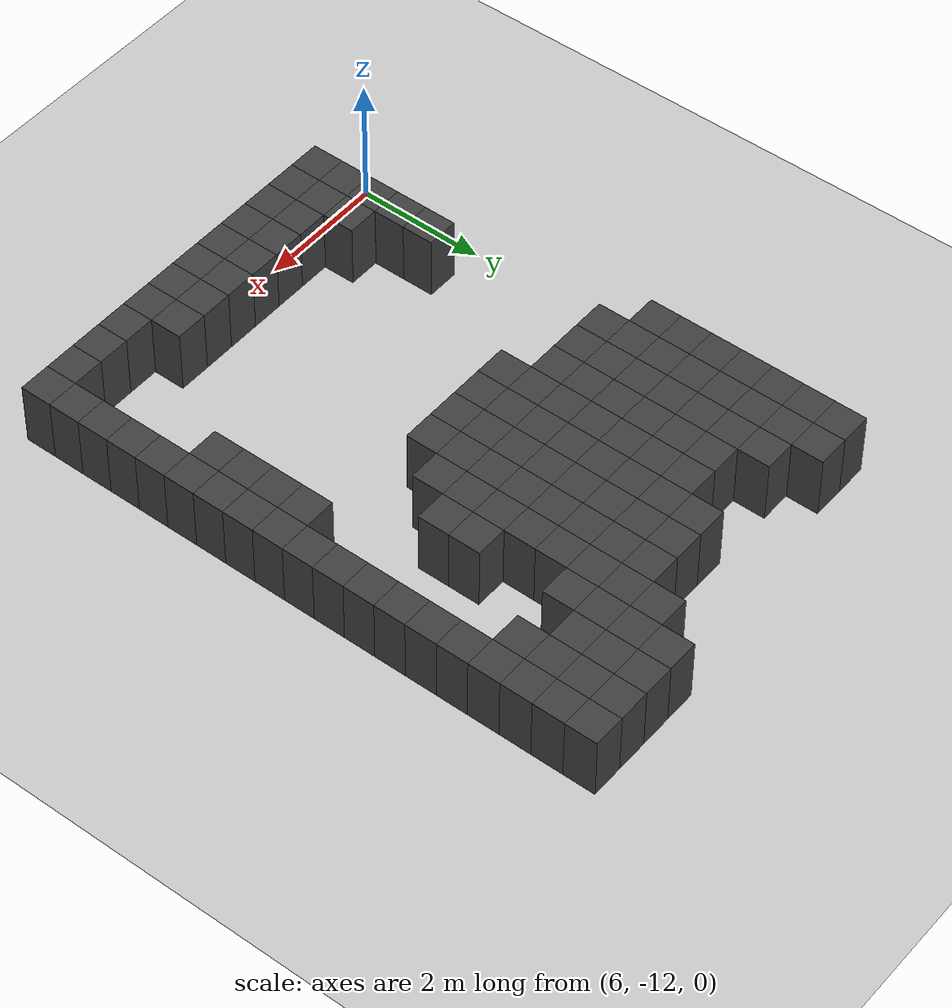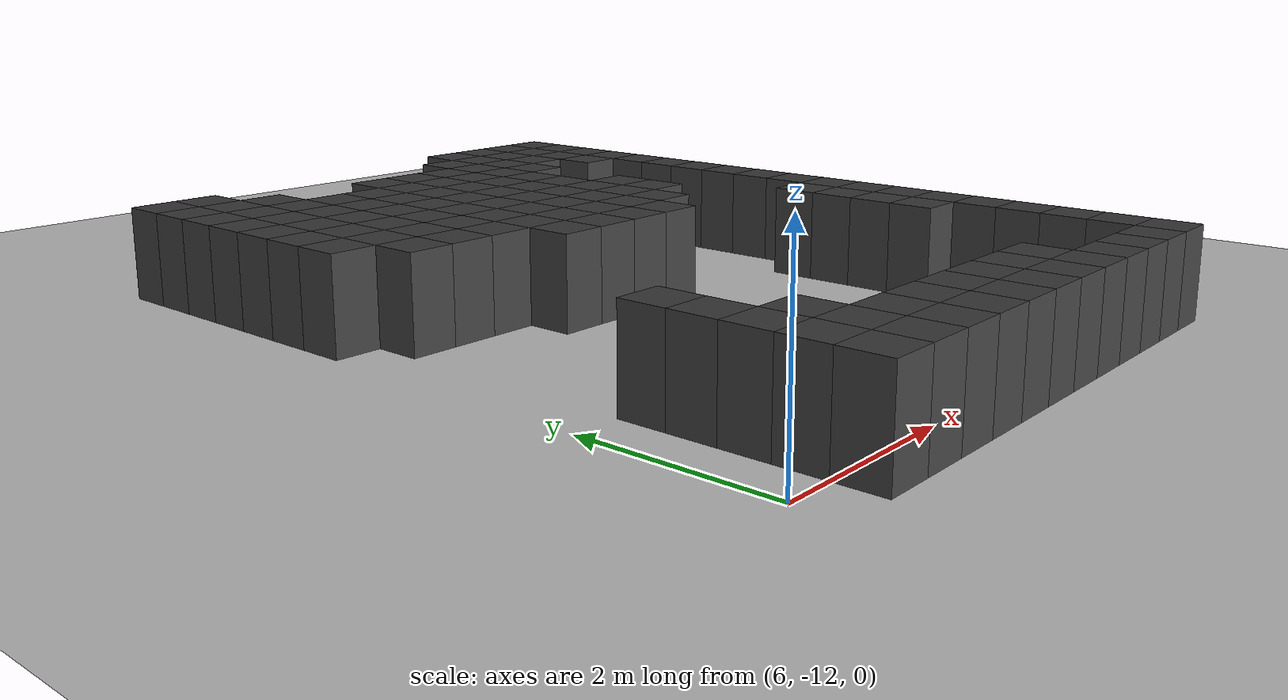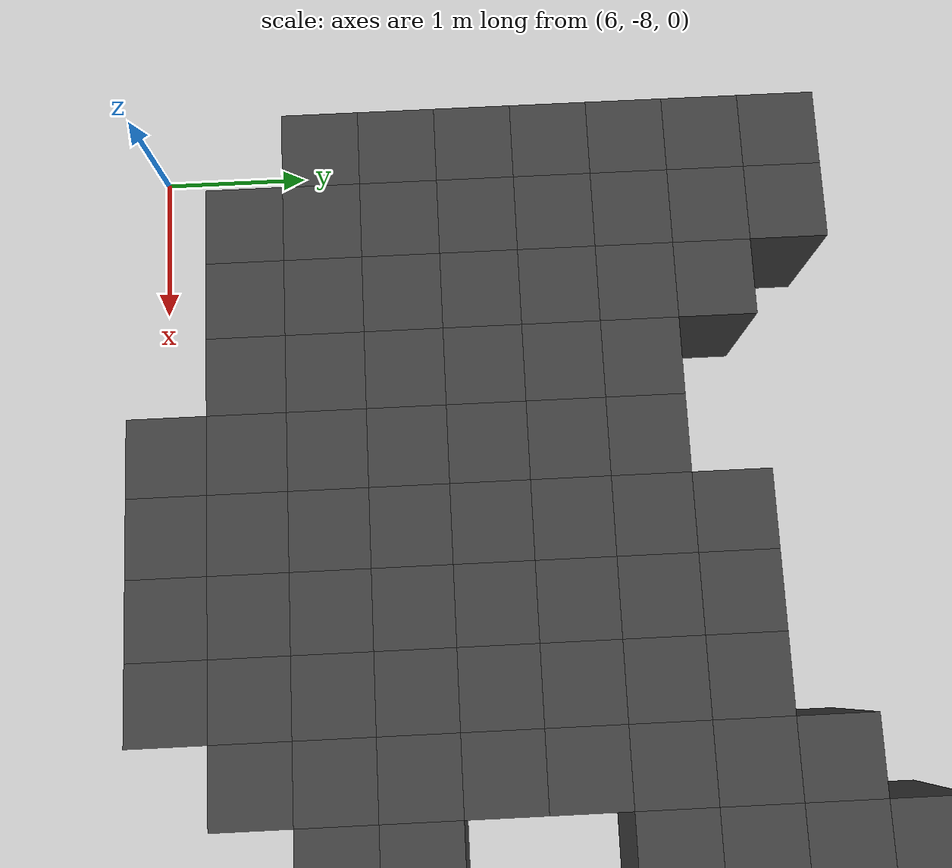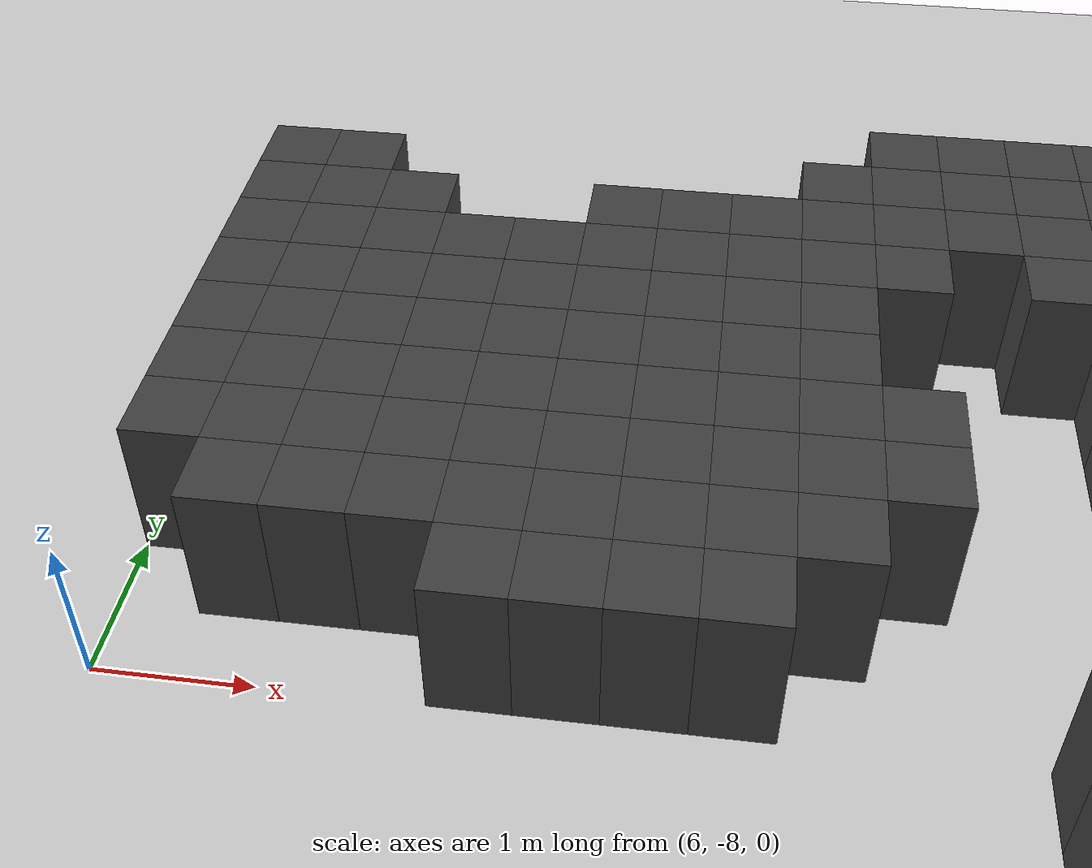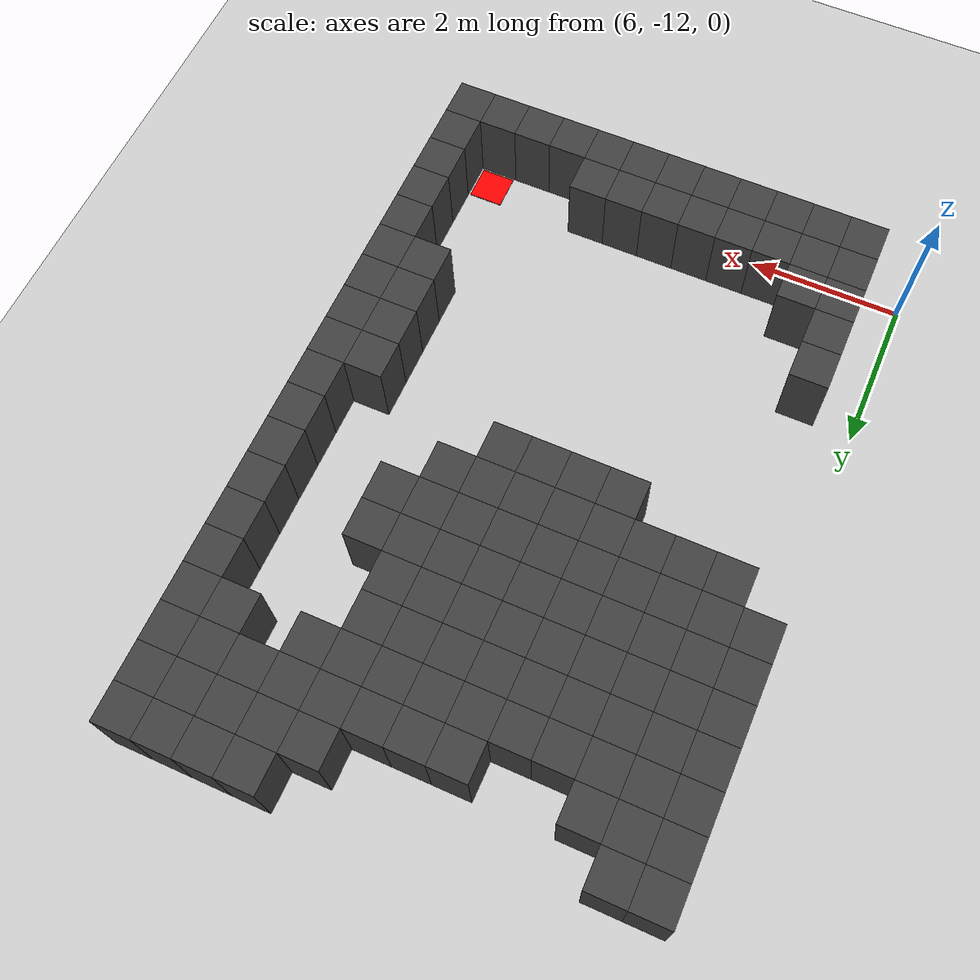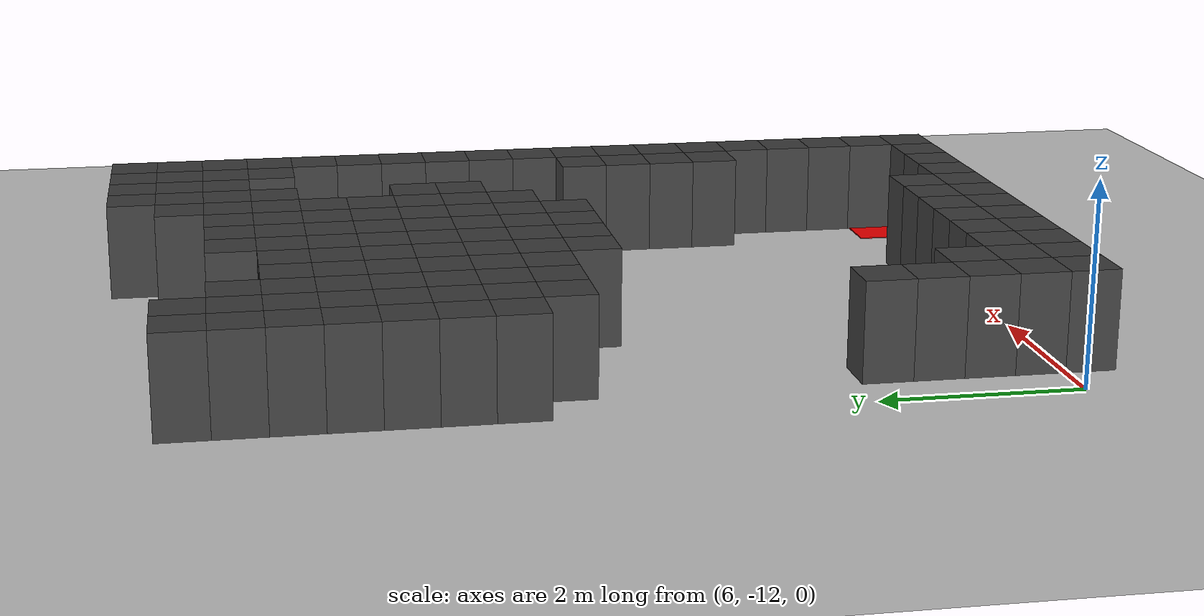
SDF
<sdf version="1.7">
 <world name="map_9544">
  <model name="ground_plane">
   <static>true</static>
   <link name="link">
    <collision name="collision">
     <geometry><plane><normal>0 0 1</normal><size>200 200</size></plane></geometry>
    </collision>
    <visual name="visual">
     <geometry><plane><normal>0 0 1</normal><size>200 200</size></plane></geometry>
     <material><ambient>0.8 0.8 0.8 1</ambient><diffuse>0.8 0.8 0.8 1</diffuse></material>
    </visual>
   </link>
  </model>
  <model name="maze_environment">
   <static>true</static>
   <link name="wall_533">
    <pose>10.750 -3.250 0.500 0 0 0</pose>
    <collision name="col"><geometry><box><size>0.5 0.5 1.0</size></box></geometry></collision>
    <visual name="vis">
     <geometry><box><size>0.5 0.5 1.0</size></box></geometry>
     <material><ambient>0.15 0.15 0.15 1</ambient><diffuse>0.25 0.25 0.25 1</diffuse></material>
    </visual>
   </link>
   <link name="wall_534">
    <pose>11.250 -3.250 0.500 0 0 0</pose>
    <collision name="col"><geometry><box><size>0.5 0.5 1.0</size></box></geometry></collision>
    <visual name="vis">
     <geometry><box><size>0.5 0.5 1.0</size></box></geometry>
     <material><ambient>0.15 0.15 0.15 1</ambient><diffuse>0.25 0.25 0.25 1</diffuse></material>
    </visual>
   </link>
   <link name="wall_535">
    <pose>11.750 -3.250 0.500 0 0 0</pose>
    <collision name="col"><geometry><box><size>0.5 0.5 1.0</size></box></geometry></collision>
    <visual name="vis">
     <geometry><box><size>0.5 0.5 1.0</size></box></geometry>
     <material><ambient>0.15 0.15 0.15 1</ambient><diffuse>0.25 0.25 0.25 1</diffuse></material>
    </visual>
   </link>
   <link name="wall_536">
    <pose>12.250 -3.250 0.500 0 0 0</pose>
    <collision name="col"><geometry><box><size>0.5 0.5 1.0</size></box></geometry></collision>
    <visual name="vis">
     <geometry><box><size>0.5 0.5 1.0</size></box></geometry>
     <material><ambient>0.15 0.15 0.15 1</ambient><diffuse>0.25 0.25 0.25 1</diffuse></material>
    </visual>
   </link>
   <link name="wall_553">
    <pose>6.250 -3.750 0.500 0 0 0</pose>
    <collision name="col"><geometry><box><size>0.5 0.5 1.0</size></box></geometry></collision>
    <visual name="vis">
     <geometry><box><size>0.5 0.5 1.0</size></box></geometry>
     <material><ambient>0.15 0.15 0.15 1</ambient><diffuse>0.25 0.25 0.25 1</diffuse></material>
    </visual>
   </link>
   <link name="wall_554">
    <pose>6.750 -3.750 0.500 0 0 0</pose>
    <collision name="col"><geometry><box><size>0.5 0.5 1.0</size></box></geometry></collision>
    <visual name="vis">
     <geometry><box><size>0.5 0.5 1.0</size></box></geometry>
     <material><ambient>0.15 0.15 0.15 1</ambient><diffuse>0.25 0.25 0.25 1</diffuse></material>
    </visual>
   </link>
   <link name="wall_555">
    <pose>10.250 -3.750 0.500 0 0 0</pose>
    <collision name="col"><geometry><box><size>0.5 0.5 1.0</size></box></geometry></collision>
    <visual name="vis">
     <geometry><box><size>0.5 0.5 1.0</size></box></geometry>
     <material><ambient>0.15 0.15 0.15 1</ambient><diffuse>0.25 0.25 0.25 1</diffuse></material>
    </visual>
   </link>
   <link name="wall_556">
    <pose>10.750 -3.750 0.500 0 0 0</pose>
    <collision name="col"><geometry><box><size>0.5 0.5 1.0</size></box></geometry></collision>
    <visual name="vis">
     <geometry><box><size>0.5 0.5 1.0</size></box></geometry>
     <material><ambient>0.15 0.15 0.15 1</ambient><diffuse>0.25 0.25 0.25 1</diffuse></material>
    </visual>
   </link>
   <link name="wall_557">
    <pose>11.250 -3.750 0.500 0 0 0</pose>
    <collision name="col"><geometry><box><size>0.5 0.5 1.0</size></box></geometry></collision>
    <visual name="vis">
     <geometry><box><size>0.5 0.5 1.0</size></box></geometry>
     <material><ambient>0.15 0.15 0.15 1</ambient><diffuse>0.25 0.25 0.25 1</diffuse></material>
    </visual>
   </link>
   <link name="wall_558">
    <pose>11.750 -3.750 0.500 0 0 0</pose>
    <collision name="col"><geometry><box><size>0.5 0.5 1.0</size></box></geometry></collision>
    <visual name="vis">
     <geometry><box><size>0.5 0.5 1.0</size></box></geometry>
     <material><ambient>0.15 0.15 0.15 1</ambient><diffuse>0.25 0.25 0.25 1</diffuse></material>
    </visual>
   </link>
   <link name="wall_559">
    <pose>12.250 -3.750 0.500 0 0 0</pose>
    <collision name="col"><geometry><box><size>0.5 0.5 1.0</size></box></geometry></collision>
    <visual name="vis">
     <geometry><box><size>0.5 0.5 1.0</size></box></geometry>
     <material><ambient>0.15 0.15 0.15 1</ambient><diffuse>0.25 0.25 0.25 1</diffuse></material>
    </visual>
   </link>
   <link name="wall_578">
    <pose>6.250 -4.250 0.500 0 0 0</pose>
    <collision name="col"><geometry><box><size>0.5 0.5 1.0</size></box></geometry></collision>
    <visual name="vis">
     <geometry><box><size>0.5 0.5 1.0</size></box></geometry>
     <material><ambient>0.15 0.15 0.15 1</ambient><diffuse>0.25 0.25 0.25 1</diffuse></material>
    </visual>
   </link>
   <link name="wall_579">
    <pose>6.750 -4.250 0.500 0 0 0</pose>
    <collision name="col"><geometry><box><size>0.5 0.5 1.0</size></box></geometry></collision>
    <visual name="vis">
     <geometry><box><size>0.5 0.5 1.0</size></box></geometry>
     <material><ambient>0.15 0.15 0.15 1</ambient><diffuse>0.25 0.25 0.25 1</diffuse></material>
    </visual>
   </link>
   <link name="wall_580">
    <pose>7.250 -4.250 0.500 0 0 0</pose>
    <collision name="col"><geometry><box><size>0.5 0.5 1.0</size></box></geometry></collision>
    <visual name="vis">
     <geometry><box><size>0.5 0.5 1.0</size></box></geometry>
     <material><ambient>0.15 0.15 0.15 1</ambient><diffuse>0.25 0.25 0.25 1</diffuse></material>
    </visual>
   </link>
   <link name="wall_581">
    <pose>8.750 -4.250 0.500 0 0 0</pose>
    <collision name="col"><geometry><box><size>0.5 0.5 1.0</size></box></geometry></collision>
    <visual name="vis">
     <geometry><box><size>0.5 0.5 1.0</size></box></geometry>
     <material><ambient>0.15 0.15 0.15 1</ambient><diffuse>0.25 0.25 0.25 1</diffuse></material>
    </visual>
   </link>
   <link name="wall_582">
    <pose>9.250 -4.250 0.500 0 0 0</pose>
    <collision name="col"><geometry><box><size>0.5 0.5 1.0</size></box></geometry></collision>
    <visual name="vis">
     <geometry><box><size>0.5 0.5 1.0</size></box></geometry>
     <material><ambient>0.15 0.15 0.15 1</ambient><diffuse>0.25 0.25 0.25 1</diffuse></material>
    </visual>
   </link>
   <link name="wall_583">
    <pose>9.750 -4.250 0.500 0 0 0</pose>
    <collision name="col"><geometry><box><size>0.5 0.5 1.0</size></box></geometry></collision>
    <visual name="vis">
     <geometry><box><size>0.5 0.5 1.0</size></box></geometry>
     <material><ambient>0.15 0.15 0.15 1</ambient><diffuse>0.25 0.25 0.25 1</diffuse></material>
    </visual>
   </link>
   <link name="wall_584">
    <pose>10.250 -4.250 0.500 0 0 0</pose>
    <collision name="col"><geometry><box><size>0.5 0.5 1.0</size></box></geometry></collision>
    <visual name="vis">
     <geometry><box><size>0.5 0.5 1.0</size></box></geometry>
     <material><ambient>0.15 0.15 0.15 1</ambient><diffuse>0.25 0.25 0.25 1</diffuse></material>
    </visual>
   </link>
   <link name="wall_585">
    <pose>10.750 -4.250 0.500 0 0 0</pose>
    <collision name="col"><geometry><box><size>0.5 0.5 1.0</size></box></geometry></collision>
    <visual name="vis">
     <geometry><box><size>0.5 0.5 1.0</size></box></geometry>
     <material><ambient>0.15 0.15 0.15 1</ambient><diffuse>0.25 0.25 0.25 1</diffuse></material>
    </visual>
   </link>
   <link name="wall_586">
    <pose>11.250 -4.250 0.500 0 0 0</pose>
    <collision name="col"><geometry><box><size>0.5 0.5 1.0</size></box></geometry></collision>
    <visual name="vis">
     <geometry><box><size>0.5 0.5 1.0</size></box></geometry>
     <material><ambient>0.15 0.15 0.15 1</ambient><diffuse>0.25 0.25 0.25 1</diffuse></material>
    </visual>
   </link>
   <link name="wall_587">
    <pose>11.750 -4.250 0.500 0 0 0</pose>
    <collision name="col"><geometry><box><size>0.5 0.5 1.0</size></box></geometry></collision>
    <visual name="vis">
     <geometry><box><size>0.5 0.5 1.0</size></box></geometry>
     <material><ambient>0.15 0.15 0.15 1</ambient><diffuse>0.25 0.25 0.25 1</diffuse></material>
    </visual>
   </link>
   <link name="wall_588">
    <pose>12.250 -4.250 0.500 0 0 0</pose>
    <collision name="col"><geometry><box><size>0.5 0.5 1.0</size></box></geometry></collision>
    <visual name="vis">
     <geometry><box><size>0.5 0.5 1.0</size></box></geometry>
     <material><ambient>0.15 0.15 0.15 1</ambient><diffuse>0.25 0.25 0.25 1</diffuse></material>
    </visual>
   </link>
   <link name="wall_608">
    <pose>6.250 -4.750 0.500 0 0 0</pose>
    <collision name="col"><geometry><box><size>0.5 0.5 1.0</size></box></geometry></collision>
    <visual name="vis">
     <geometry><box><size>0.5 0.5 1.0</size></box></geometry>
     <material><ambient>0.15 0.15 0.15 1</ambient><diffuse>0.25 0.25 0.25 1</diffuse></material>
    </visual>
   </link>
   <link name="wall_609">
    <pose>6.750 -4.750 0.500 0 0 0</pose>
    <collision name="col"><geometry><box><size>0.5 0.5 1.0</size></box></geometry></collision>
    <visual name="vis">
     <geometry><box><size>0.5 0.5 1.0</size></box></geometry>
     <material><ambient>0.15 0.15 0.15 1</ambient><diffuse>0.25 0.25 0.25 1</diffuse></material>
    </visual>
   </link>
   <link name="wall_610">
    <pose>7.250 -4.750 0.500 0 0 0</pose>
    <collision name="col"><geometry><box><size>0.5 0.5 1.0</size></box></geometry></collision>
    <visual name="vis">
     <geometry><box><size>0.5 0.5 1.0</size></box></geometry>
     <material><ambient>0.15 0.15 0.15 1</ambient><diffuse>0.25 0.25 0.25 1</diffuse></material>
    </visual>
   </link>
   <link name="wall_611">
    <pose>7.750 -4.750 0.500 0 0 0</pose>
    <collision name="col"><geometry><box><size>0.5 0.5 1.0</size></box></geometry></collision>
    <visual name="vis">
     <geometry><box><size>0.5 0.5 1.0</size></box></geometry>
     <material><ambient>0.15 0.15 0.15 1</ambient><diffuse>0.25 0.25 0.25 1</diffuse></material>
    </visual>
   </link>
   <link name="wall_612">
    <pose>8.250 -4.750 0.500 0 0 0</pose>
    <collision name="col"><geometry><box><size>0.5 0.5 1.0</size></box></geometry></collision>
    <visual name="vis">
     <geometry><box><size>0.5 0.5 1.0</size></box></geometry>
     <material><ambient>0.15 0.15 0.15 1</ambient><diffuse>0.25 0.25 0.25 1</diffuse></material>
    </visual>
   </link>
   <link name="wall_613">
    <pose>8.750 -4.750 0.500 0 0 0</pose>
    <collision name="col"><geometry><box><size>0.5 0.5 1.0</size></box></geometry></collision>
    <visual name="vis">
     <geometry><box><size>0.5 0.5 1.0</size></box></geometry>
     <material><ambient>0.15 0.15 0.15 1</ambient><diffuse>0.25 0.25 0.25 1</diffuse></material>
    </visual>
   </link>
   <link name="wall_614">
    <pose>9.250 -4.750 0.500 0 0 0</pose>
    <collision name="col"><geometry><box><size>0.5 0.5 1.0</size></box></geometry></collision>
    <visual name="vis">
     <geometry><box><size>0.5 0.5 1.0</size></box></geometry>
     <material><ambient>0.15 0.15 0.15 1</ambient><diffuse>0.25 0.25 0.25 1</diffuse></material>
    </visual>
   </link>
   <link name="wall_615">
    <pose>9.750 -4.750 0.500 0 0 0</pose>
    <collision name="col"><geometry><box><size>0.5 0.5 1.0</size></box></geometry></collision>
    <visual name="vis">
     <geometry><box><size>0.5 0.5 1.0</size></box></geometry>
     <material><ambient>0.15 0.15 0.15 1</ambient><diffuse>0.25 0.25 0.25 1</diffuse></material>
    </visual>
   </link>
   <link name="wall_616">
    <pose>10.250 -4.750 0.500 0 0 0</pose>
    <collision name="col"><geometry><box><size>0.5 0.5 1.0</size></box></geometry></collision>
    <visual name="vis">
     <geometry><box><size>0.5 0.5 1.0</size></box></geometry>
     <material><ambient>0.15 0.15 0.15 1</ambient><diffuse>0.25 0.25 0.25 1</diffuse></material>
    </visual>
   </link>
   <link name="wall_617">
    <pose>10.750 -4.750 0.500 0 0 0</pose>
    <collision name="col"><geometry><box><size>0.5 0.5 1.0</size></box></geometry></collision>
    <visual name="vis">
     <geometry><box><size>0.5 0.5 1.0</size></box></geometry>
     <material><ambient>0.15 0.15 0.15 1</ambient><diffuse>0.25 0.25 0.25 1</diffuse></material>
    </visual>
   </link>
   <link name="wall_618">
    <pose>11.750 -4.750 0.500 0 0 0</pose>
    <collision name="col"><geometry><box><size>0.5 0.5 1.0</size></box></geometry></collision>
    <visual name="vis">
     <geometry><box><size>0.5 0.5 1.0</size></box></geometry>
     <material><ambient>0.15 0.15 0.15 1</ambient><diffuse>0.25 0.25 0.25 1</diffuse></material>
    </visual>
   </link>
   <link name="wall_619">
    <pose>12.250 -4.750 0.500 0 0 0</pose>
    <collision name="col"><geometry><box><size>0.5 0.5 1.0</size></box></geometry></collision>
    <visual name="vis">
     <geometry><box><size>0.5 0.5 1.0</size></box></geometry>
     <material><ambient>0.15 0.15 0.15 1</ambient><diffuse>0.25 0.25 0.25 1</diffuse></material>
    </visual>
   </link>
   <link name="wall_636">
    <pose>6.250 -5.250 0.500 0 0 0</pose>
    <collision name="col"><geometry><box><size>0.5 0.5 1.0</size></box></geometry></collision>
    <visual name="vis">
     <geometry><box><size>0.5 0.5 1.0</size></box></geometry>
     <material><ambient>0.15 0.15 0.15 1</ambient><diffuse>0.25 0.25 0.25 1</diffuse></material>
    </visual>
   </link>
   <link name="wall_637">
    <pose>6.750 -5.250 0.500 0 0 0</pose>
    <collision name="col"><geometry><box><size>0.5 0.5 1.0</size></box></geometry></collision>
    <visual name="vis">
     <geometry><box><size>0.5 0.5 1.0</size></box></geometry>
     <material><ambient>0.15 0.15 0.15 1</ambient><diffuse>0.25 0.25 0.25 1</diffuse></material>
    </visual>
   </link>
   <link name="wall_638">
    <pose>7.250 -5.250 0.500 0 0 0</pose>
    <collision name="col"><geometry><box><size>0.5 0.5 1.0</size></box></geometry></collision>
    <visual name="vis">
     <geometry><box><size>0.5 0.5 1.0</size></box></geometry>
     <material><ambient>0.15 0.15 0.15 1</ambient><diffuse>0.25 0.25 0.25 1</diffuse></material>
    </visual>
   </link>
   <link name="wall_639">
    <pose>7.750 -5.250 0.500 0 0 0</pose>
    <collision name="col"><geometry><box><size>0.5 0.5 1.0</size></box></geometry></collision>
    <visual name="vis">
     <geometry><box><size>0.5 0.5 1.0</size></box></geometry>
     <material><ambient>0.15 0.15 0.15 1</ambient><diffuse>0.25 0.25 0.25 1</diffuse></material>
    </visual>
   </link>
   <link name="wall_640">
    <pose>8.250 -5.250 0.500 0 0 0</pose>
    <collision name="col"><geometry><box><size>0.5 0.5 1.0</size></box></geometry></collision>
    <visual name="vis">
     <geometry><box><size>0.5 0.5 1.0</size></box></geometry>
     <material><ambient>0.15 0.15 0.15 1</ambient><diffuse>0.25 0.25 0.25 1</diffuse></material>
    </visual>
   </link>
   <link name="wall_641">
    <pose>8.750 -5.250 0.500 0 0 0</pose>
    <collision name="col"><geometry><box><size>0.5 0.5 1.0</size></box></geometry></collision>
    <visual name="vis">
     <geometry><box><size>0.5 0.5 1.0</size></box></geometry>
     <material><ambient>0.15 0.15 0.15 1</ambient><diffuse>0.25 0.25 0.25 1</diffuse></material>
    </visual>
   </link>
   <link name="wall_642">
    <pose>9.250 -5.250 0.500 0 0 0</pose>
    <collision name="col"><geometry><box><size>0.5 0.5 1.0</size></box></geometry></collision>
    <visual name="vis">
     <geometry><box><size>0.5 0.5 1.0</size></box></geometry>
     <material><ambient>0.15 0.15 0.15 1</ambient><diffuse>0.25 0.25 0.25 1</diffuse></material>
    </visual>
   </link>
   <link name="wall_643">
    <pose>9.750 -5.250 0.500 0 0 0</pose>
    <collision name="col"><geometry><box><size>0.5 0.5 1.0</size></box></geometry></collision>
    <visual name="vis">
     <geometry><box><size>0.5 0.5 1.0</size></box></geometry>
     <material><ambient>0.15 0.15 0.15 1</ambient><diffuse>0.25 0.25 0.25 1</diffuse></material>
    </visual>
   </link>
   <link name="wall_644">
    <pose>10.250 -5.250 0.500 0 0 0</pose>
    <collision name="col"><geometry><box><size>0.5 0.5 1.0</size></box></geometry></collision>
    <visual name="vis">
     <geometry><box><size>0.5 0.5 1.0</size></box></geometry>
     <material><ambient>0.15 0.15 0.15 1</ambient><diffuse>0.25 0.25 0.25 1</diffuse></material>
    </visual>
   </link>
   <link name="wall_645">
    <pose>12.250 -5.250 0.500 0 0 0</pose>
    <collision name="col"><geometry><box><size>0.5 0.5 1.0</size></box></geometry></collision>
    <visual name="vis">
     <geometry><box><size>0.5 0.5 1.0</size></box></geometry>
     <material><ambient>0.15 0.15 0.15 1</ambient><diffuse>0.25 0.25 0.25 1</diffuse></material>
    </visual>
   </link>
   <link name="wall_661">
    <pose>6.250 -5.750 0.500 0 0 0</pose>
    <collision name="col"><geometry><box><size>0.5 0.5 1.0</size></box></geometry></collision>
    <visual name="vis">
     <geometry><box><size>0.5 0.5 1.0</size></box></geometry>
     <material><ambient>0.15 0.15 0.15 1</ambient><diffuse>0.25 0.25 0.25 1</diffuse></material>
    </visual>
   </link>
   <link name="wall_662">
    <pose>6.750 -5.750 0.500 0 0 0</pose>
    <collision name="col"><geometry><box><size>0.5 0.5 1.0</size></box></geometry></collision>
    <visual name="vis">
     <geometry><box><size>0.5 0.5 1.0</size></box></geometry>
     <material><ambient>0.15 0.15 0.15 1</ambient><diffuse>0.25 0.25 0.25 1</diffuse></material>
    </visual>
   </link>
   <link name="wall_663">
    <pose>7.250 -5.750 0.500 0 0 0</pose>
    <collision name="col"><geometry><box><size>0.5 0.5 1.0</size></box></geometry></collision>
    <visual name="vis">
     <geometry><box><size>0.5 0.5 1.0</size></box></geometry>
     <material><ambient>0.15 0.15 0.15 1</ambient><diffuse>0.25 0.25 0.25 1</diffuse></material>
    </visual>
   </link>
   <link name="wall_664">
    <pose>7.750 -5.750 0.500 0 0 0</pose>
    <collision name="col"><geometry><box><size>0.5 0.5 1.0</size></box></geometry></collision>
    <visual name="vis">
     <geometry><box><size>0.5 0.5 1.0</size></box></geometry>
     <material><ambient>0.15 0.15 0.15 1</ambient><diffuse>0.25 0.25 0.25 1</diffuse></material>
    </visual>
   </link>
   <link name="wall_665">
    <pose>8.250 -5.750 0.500 0 0 0</pose>
    <collision name="col"><geometry><box><size>0.5 0.5 1.0</size></box></geometry></collision>
    <visual name="vis">
     <geometry><box><size>0.5 0.5 1.0</size></box></geometry>
     <material><ambient>0.15 0.15 0.15 1</ambient><diffuse>0.25 0.25 0.25 1</diffuse></material>
    </visual>
   </link>
   <link name="wall_666">
    <pose>8.750 -5.750 0.500 0 0 0</pose>
    <collision name="col"><geometry><box><size>0.5 0.5 1.0</size></box></geometry></collision>
    <visual name="vis">
     <geometry><box><size>0.5 0.5 1.0</size></box></geometry>
     <material><ambient>0.15 0.15 0.15 1</ambient><diffuse>0.25 0.25 0.25 1</diffuse></material>
    </visual>
   </link>
   <link name="wall_667">
    <pose>9.250 -5.750 0.500 0 0 0</pose>
    <collision name="col"><geometry><box><size>0.5 0.5 1.0</size></box></geometry></collision>
    <visual name="vis">
     <geometry><box><size>0.5 0.5 1.0</size></box></geometry>
     <material><ambient>0.15 0.15 0.15 1</ambient><diffuse>0.25 0.25 0.25 1</diffuse></material>
    </visual>
   </link>
   <link name="wall_668">
    <pose>9.750 -5.750 0.500 0 0 0</pose>
    <collision name="col"><geometry><box><size>0.5 0.5 1.0</size></box></geometry></collision>
    <visual name="vis">
     <geometry><box><size>0.5 0.5 1.0</size></box></geometry>
     <material><ambient>0.15 0.15 0.15 1</ambient><diffuse>0.25 0.25 0.25 1</diffuse></material>
    </visual>
   </link>
   <link name="wall_669">
    <pose>10.250 -5.750 0.500 0 0 0</pose>
    <collision name="col"><geometry><box><size>0.5 0.5 1.0</size></box></geometry></collision>
    <visual name="vis">
     <geometry><box><size>0.5 0.5 1.0</size></box></geometry>
     <material><ambient>0.15 0.15 0.15 1</ambient><diffuse>0.25 0.25 0.25 1</diffuse></material>
    </visual>
   </link>
   <link name="wall_670">
    <pose>12.250 -5.750 0.500 0 0 0</pose>
    <collision name="col"><geometry><box><size>0.5 0.5 1.0</size></box></geometry></collision>
    <visual name="vis">
     <geometry><box><size>0.5 0.5 1.0</size></box></geometry>
     <material><ambient>0.15 0.15 0.15 1</ambient><diffuse>0.25 0.25 0.25 1</diffuse></material>
    </visual>
   </link>
   <link name="wall_690">
    <pose>6.250 -6.250 0.500 0 0 0</pose>
    <collision name="col"><geometry><box><size>0.5 0.5 1.0</size></box></geometry></collision>
    <visual name="vis">
     <geometry><box><size>0.5 0.5 1.0</size></box></geometry>
     <material><ambient>0.15 0.15 0.15 1</ambient><diffuse>0.25 0.25 0.25 1</diffuse></material>
    </visual>
   </link>
   <link name="wall_691">
    <pose>6.750 -6.250 0.500 0 0 0</pose>
    <collision name="col"><geometry><box><size>0.5 0.5 1.0</size></box></geometry></collision>
    <visual name="vis">
     <geometry><box><size>0.5 0.5 1.0</size></box></geometry>
     <material><ambient>0.15 0.15 0.15 1</ambient><diffuse>0.25 0.25 0.25 1</diffuse></material>
    </visual>
   </link>
   <link name="wall_692">
    <pose>7.250 -6.250 0.500 0 0 0</pose>
    <collision name="col"><geometry><box><size>0.5 0.5 1.0</size></box></geometry></collision>
    <visual name="vis">
     <geometry><box><size>0.5 0.5 1.0</size></box></geometry>
     <material><ambient>0.15 0.15 0.15 1</ambient><diffuse>0.25 0.25 0.25 1</diffuse></material>
    </visual>
   </link>
   <link name="wall_693">
    <pose>7.750 -6.250 0.500 0 0 0</pose>
    <collision name="col"><geometry><box><size>0.5 0.5 1.0</size></box></geometry></collision>
    <visual name="vis">
     <geometry><box><size>0.5 0.5 1.0</size></box></geometry>
     <material><ambient>0.15 0.15 0.15 1</ambient><diffuse>0.25 0.25 0.25 1</diffuse></material>
    </visual>
   </link>
   <link name="wall_694">
    <pose>8.250 -6.250 0.500 0 0 0</pose>
    <collision name="col"><geometry><box><size>0.5 0.5 1.0</size></box></geometry></collision>
    <visual name="vis">
     <geometry><box><size>0.5 0.5 1.0</size></box></geometry>
     <material><ambient>0.15 0.15 0.15 1</ambient><diffuse>0.25 0.25 0.25 1</diffuse></material>
    </visual>
   </link>
   <link name="wall_695">
    <pose>8.750 -6.250 0.500 0 0 0</pose>
    <collision name="col"><geometry><box><size>0.5 0.5 1.0</size></box></geometry></collision>
    <visual name="vis">
     <geometry><box><size>0.5 0.5 1.0</size></box></geometry>
     <material><ambient>0.15 0.15 0.15 1</ambient><diffuse>0.25 0.25 0.25 1</diffuse></material>
    </visual>
   </link>
   <link name="wall_696">
    <pose>9.250 -6.250 0.500 0 0 0</pose>
    <collision name="col"><geometry><box><size>0.5 0.5 1.0</size></box></geometry></collision>
    <visual name="vis">
     <geometry><box><size>0.5 0.5 1.0</size></box></geometry>
     <material><ambient>0.15 0.15 0.15 1</ambient><diffuse>0.25 0.25 0.25 1</diffuse></material>
    </visual>
   </link>
   <link name="wall_697">
    <pose>9.750 -6.250 0.500 0 0 0</pose>
    <collision name="col"><geometry><box><size>0.5 0.5 1.0</size></box></geometry></collision>
    <visual name="vis">
     <geometry><box><size>0.5 0.5 1.0</size></box></geometry>
     <material><ambient>0.15 0.15 0.15 1</ambient><diffuse>0.25 0.25 0.25 1</diffuse></material>
    </visual>
   </link>
   <link name="wall_698">
    <pose>10.250 -6.250 0.500 0 0 0</pose>
    <collision name="col"><geometry><box><size>0.5 0.5 1.0</size></box></geometry></collision>
    <visual name="vis">
     <geometry><box><size>0.5 0.5 1.0</size></box></geometry>
     <material><ambient>0.15 0.15 0.15 1</ambient><diffuse>0.25 0.25 0.25 1</diffuse></material>
    </visual>
   </link>
   <link name="wall_699">
    <pose>10.750 -6.250 0.500 0 0 0</pose>
    <collision name="col"><geometry><box><size>0.5 0.5 1.0</size></box></geometry></collision>
    <visual name="vis">
     <geometry><box><size>0.5 0.5 1.0</size></box></geometry>
     <material><ambient>0.15 0.15 0.15 1</ambient><diffuse>0.25 0.25 0.25 1</diffuse></material>
    </visual>
   </link>
   <link name="wall_700">
    <pose>12.250 -6.250 0.500 0 0 0</pose>
    <collision name="col"><geometry><box><size>0.5 0.5 1.0</size></box></geometry></collision>
    <visual name="vis">
     <geometry><box><size>0.5 0.5 1.0</size></box></geometry>
     <material><ambient>0.15 0.15 0.15 1</ambient><diffuse>0.25 0.25 0.25 1</diffuse></material>
    </visual>
   </link>
   <link name="wall_725">
    <pose>6.250 -6.750 0.500 0 0 0</pose>
    <collision name="col"><geometry><box><size>0.5 0.5 1.0</size></box></geometry></collision>
    <visual name="vis">
     <geometry><box><size>0.5 0.5 1.0</size></box></geometry>
     <material><ambient>0.15 0.15 0.15 1</ambient><diffuse>0.25 0.25 0.25 1</diffuse></material>
    </visual>
   </link>
   <link name="wall_726">
    <pose>6.750 -6.750 0.500 0 0 0</pose>
    <collision name="col"><geometry><box><size>0.5 0.5 1.0</size></box></geometry></collision>
    <visual name="vis">
     <geometry><box><size>0.5 0.5 1.0</size></box></geometry>
     <material><ambient>0.15 0.15 0.15 1</ambient><diffuse>0.25 0.25 0.25 1</diffuse></material>
    </visual>
   </link>
   <link name="wall_727">
    <pose>7.250 -6.750 0.500 0 0 0</pose>
    <collision name="col"><geometry><box><size>0.5 0.5 1.0</size></box></geometry></collision>
    <visual name="vis">
     <geometry><box><size>0.5 0.5 1.0</size></box></geometry>
     <material><ambient>0.15 0.15 0.15 1</ambient><diffuse>0.25 0.25 0.25 1</diffuse></material>
    </visual>
   </link>
   <link name="wall_728">
    <pose>7.750 -6.750 0.500 0 0 0</pose>
    <collision name="col"><geometry><box><size>0.5 0.5 1.0</size></box></geometry></collision>
    <visual name="vis">
     <geometry><box><size>0.5 0.5 1.0</size></box></geometry>
     <material><ambient>0.15 0.15 0.15 1</ambient><diffuse>0.25 0.25 0.25 1</diffuse></material>
    </visual>
   </link>
   <link name="wall_729">
    <pose>8.250 -6.750 0.500 0 0 0</pose>
    <collision name="col"><geometry><box><size>0.5 0.5 1.0</size></box></geometry></collision>
    <visual name="vis">
     <geometry><box><size>0.5 0.5 1.0</size></box></geometry>
     <material><ambient>0.15 0.15 0.15 1</ambient><diffuse>0.25 0.25 0.25 1</diffuse></material>
    </visual>
   </link>
   <link name="wall_730">
    <pose>8.750 -6.750 0.500 0 0 0</pose>
    <collision name="col"><geometry><box><size>0.5 0.5 1.0</size></box></geometry></collision>
    <visual name="vis">
     <geometry><box><size>0.5 0.5 1.0</size></box></geometry>
     <material><ambient>0.15 0.15 0.15 1</ambient><diffuse>0.25 0.25 0.25 1</diffuse></material>
    </visual>
   </link>
   <link name="wall_731">
    <pose>9.250 -6.750 0.500 0 0 0</pose>
    <collision name="col"><geometry><box><size>0.5 0.5 1.0</size></box></geometry></collision>
    <visual name="vis">
     <geometry><box><size>0.5 0.5 1.0</size></box></geometry>
     <material><ambient>0.15 0.15 0.15 1</ambient><diffuse>0.25 0.25 0.25 1</diffuse></material>
    </visual>
   </link>
   <link name="wall_732">
    <pose>9.750 -6.750 0.500 0 0 0</pose>
    <collision name="col"><geometry><box><size>0.5 0.5 1.0</size></box></geometry></collision>
    <visual name="vis">
     <geometry><box><size>0.5 0.5 1.0</size></box></geometry>
     <material><ambient>0.15 0.15 0.15 1</ambient><diffuse>0.25 0.25 0.25 1</diffuse></material>
    </visual>
   </link>
   <link name="wall_733">
    <pose>10.250 -6.750 0.500 0 0 0</pose>
    <collision name="col"><geometry><box><size>0.5 0.5 1.0</size></box></geometry></collision>
    <visual name="vis">
     <geometry><box><size>0.5 0.5 1.0</size></box></geometry>
     <material><ambient>0.15 0.15 0.15 1</ambient><diffuse>0.25 0.25 0.25 1</diffuse></material>
    </visual>
   </link>
   <link name="wall_734">
    <pose>10.750 -6.750 0.500 0 0 0</pose>
    <collision name="col"><geometry><box><size>0.5 0.5 1.0</size></box></geometry></collision>
    <visual name="vis">
     <geometry><box><size>0.5 0.5 1.0</size></box></geometry>
     <material><ambient>0.15 0.15 0.15 1</ambient><diffuse>0.25 0.25 0.25 1</diffuse></material>
    </visual>
   </link>
   <link name="wall_735">
    <pose>12.250 -6.750 0.500 0 0 0</pose>
    <collision name="col"><geometry><box><size>0.5 0.5 1.0</size></box></geometry></collision>
    <visual name="vis">
     <geometry><box><size>0.5 0.5 1.0</size></box></geometry>
     <material><ambient>0.15 0.15 0.15 1</ambient><diffuse>0.25 0.25 0.25 1</diffuse></material>
    </visual>
   </link>
   <link name="wall_760">
    <pose>6.750 -7.250 0.500 0 0 0</pose>
    <collision name="col"><geometry><box><size>0.5 0.5 1.0</size></box></geometry></collision>
    <visual name="vis">
     <geometry><box><size>0.5 0.5 1.0</size></box></geometry>
     <material><ambient>0.15 0.15 0.15 1</ambient><diffuse>0.25 0.25 0.25 1</diffuse></material>
    </visual>
   </link>
   <link name="wall_761">
    <pose>7.250 -7.250 0.500 0 0 0</pose>
    <collision name="col"><geometry><box><size>0.5 0.5 1.0</size></box></geometry></collision>
    <visual name="vis">
     <geometry><box><size>0.5 0.5 1.0</size></box></geometry>
     <material><ambient>0.15 0.15 0.15 1</ambient><diffuse>0.25 0.25 0.25 1</diffuse></material>
    </visual>
   </link>
   <link name="wall_762">
    <pose>7.750 -7.250 0.500 0 0 0</pose>
    <collision name="col"><geometry><box><size>0.5 0.5 1.0</size></box></geometry></collision>
    <visual name="vis">
     <geometry><box><size>0.5 0.5 1.0</size></box></geometry>
     <material><ambient>0.15 0.15 0.15 1</ambient><diffuse>0.25 0.25 0.25 1</diffuse></material>
    </visual>
   </link>
   <link name="wall_763">
    <pose>8.250 -7.250 0.500 0 0 0</pose>
    <collision name="col"><geometry><box><size>0.5 0.5 1.0</size></box></geometry></collision>
    <visual name="vis">
     <geometry><box><size>0.5 0.5 1.0</size></box></geometry>
     <material><ambient>0.15 0.15 0.15 1</ambient><diffuse>0.25 0.25 0.25 1</diffuse></material>
    </visual>
   </link>
   <link name="wall_764">
    <pose>8.750 -7.250 0.500 0 0 0</pose>
    <collision name="col"><geometry><box><size>0.5 0.5 1.0</size></box></geometry></collision>
    <visual name="vis">
     <geometry><box><size>0.5 0.5 1.0</size></box></geometry>
     <material><ambient>0.15 0.15 0.15 1</ambient><diffuse>0.25 0.25 0.25 1</diffuse></material>
    </visual>
   </link>
   <link name="wall_765">
    <pose>9.250 -7.250 0.500 0 0 0</pose>
    <collision name="col"><geometry><box><size>0.5 0.5 1.0</size></box></geometry></collision>
    <visual name="vis">
     <geometry><box><size>0.5 0.5 1.0</size></box></geometry>
     <material><ambient>0.15 0.15 0.15 1</ambient><diffuse>0.25 0.25 0.25 1</diffuse></material>
    </visual>
   </link>
   <link name="wall_766">
    <pose>9.750 -7.250 0.500 0 0 0</pose>
    <collision name="col"><geometry><box><size>0.5 0.5 1.0</size></box></geometry></collision>
    <visual name="vis">
     <geometry><box><size>0.5 0.5 1.0</size></box></geometry>
     <material><ambient>0.15 0.15 0.15 1</ambient><diffuse>0.25 0.25 0.25 1</diffuse></material>
    </visual>
   </link>
   <link name="wall_767">
    <pose>10.250 -7.250 0.500 0 0 0</pose>
    <collision name="col"><geometry><box><size>0.5 0.5 1.0</size></box></geometry></collision>
    <visual name="vis">
     <geometry><box><size>0.5 0.5 1.0</size></box></geometry>
     <material><ambient>0.15 0.15 0.15 1</ambient><diffuse>0.25 0.25 0.25 1</diffuse></material>
    </visual>
   </link>
   <link name="wall_768">
    <pose>12.250 -7.250 0.500 0 0 0</pose>
    <collision name="col"><geometry><box><size>0.5 0.5 1.0</size></box></geometry></collision>
    <visual name="vis">
     <geometry><box><size>0.5 0.5 1.0</size></box></geometry>
     <material><ambient>0.15 0.15 0.15 1</ambient><diffuse>0.25 0.25 0.25 1</diffuse></material>
    </visual>
   </link>
   <link name="wall_792">
    <pose>8.250 -7.750 0.500 0 0 0</pose>
    <collision name="col"><geometry><box><size>0.5 0.5 1.0</size></box></geometry></collision>
    <visual name="vis">
     <geometry><box><size>0.5 0.5 1.0</size></box></geometry>
     <material><ambient>0.15 0.15 0.15 1</ambient><diffuse>0.25 0.25 0.25 1</diffuse></material>
    </visual>
   </link>
   <link name="wall_793">
    <pose>8.750 -7.750 0.500 0 0 0</pose>
    <collision name="col"><geometry><box><size>0.5 0.5 1.0</size></box></geometry></collision>
    <visual name="vis">
     <geometry><box><size>0.5 0.5 1.0</size></box></geometry>
     <material><ambient>0.15 0.15 0.15 1</ambient><diffuse>0.25 0.25 0.25 1</diffuse></material>
    </visual>
   </link>
   <link name="wall_794">
    <pose>9.250 -7.750 0.500 0 0 0</pose>
    <collision name="col"><geometry><box><size>0.5 0.5 1.0</size></box></geometry></collision>
    <visual name="vis">
     <geometry><box><size>0.5 0.5 1.0</size></box></geometry>
     <material><ambient>0.15 0.15 0.15 1</ambient><diffuse>0.25 0.25 0.25 1</diffuse></material>
    </visual>
   </link>
   <link name="wall_795">
    <pose>9.750 -7.750 0.500 0 0 0</pose>
    <collision name="col"><geometry><box><size>0.5 0.5 1.0</size></box></geometry></collision>
    <visual name="vis">
     <geometry><box><size>0.5 0.5 1.0</size></box></geometry>
     <material><ambient>0.15 0.15 0.15 1</ambient><diffuse>0.25 0.25 0.25 1</diffuse></material>
    </visual>
   </link>
   <link name="wall_796">
    <pose>12.250 -7.750 0.500 0 0 0</pose>
    <collision name="col"><geometry><box><size>0.5 0.5 1.0</size></box></geometry></collision>
    <visual name="vis">
     <geometry><box><size>0.5 0.5 1.0</size></box></geometry>
     <material><ambient>0.15 0.15 0.15 1</ambient><diffuse>0.25 0.25 0.25 1</diffuse></material>
    </visual>
   </link>
   <link name="wall_816">
    <pose>11.750 -8.250 0.500 0 0 0</pose>
    <collision name="col"><geometry><box><size>0.5 0.5 1.0</size></box></geometry></collision>
    <visual name="vis">
     <geometry><box><size>0.5 0.5 1.0</size></box></geometry>
     <material><ambient>0.15 0.15 0.15 1</ambient><diffuse>0.25 0.25 0.25 1</diffuse></material>
    </visual>
   </link>
   <link name="wall_817">
    <pose>12.250 -8.250 0.500 0 0 0</pose>
    <collision name="col"><geometry><box><size>0.5 0.5 1.0</size></box></geometry></collision>
    <visual name="vis">
     <geometry><box><size>0.5 0.5 1.0</size></box></geometry>
     <material><ambient>0.15 0.15 0.15 1</ambient><diffuse>0.25 0.25 0.25 1</diffuse></material>
    </visual>
   </link>
   <link name="wall_836">
    <pose>11.750 -8.750 0.500 0 0 0</pose>
    <collision name="col"><geometry><box><size>0.5 0.5 1.0</size></box></geometry></collision>
    <visual name="vis">
     <geometry><box><size>0.5 0.5 1.0</size></box></geometry>
     <material><ambient>0.15 0.15 0.15 1</ambient><diffuse>0.25 0.25 0.25 1</diffuse></material>
    </visual>
   </link>
   <link name="wall_837">
    <pose>12.250 -8.750 0.500 0 0 0</pose>
    <collision name="col"><geometry><box><size>0.5 0.5 1.0</size></box></geometry></collision>
    <visual name="vis">
     <geometry><box><size>0.5 0.5 1.0</size></box></geometry>
     <material><ambient>0.15 0.15 0.15 1</ambient><diffuse>0.25 0.25 0.25 1</diffuse></material>
    </visual>
   </link>
   <link name="wall_859">
    <pose>11.750 -9.250 0.500 0 0 0</pose>
    <collision name="col"><geometry><box><size>0.5 0.5 1.0</size></box></geometry></collision>
    <visual name="vis">
     <geometry><box><size>0.5 0.5 1.0</size></box></geometry>
     <material><ambient>0.15 0.15 0.15 1</ambient><diffuse>0.25 0.25 0.25 1</diffuse></material>
    </visual>
   </link>
   <link name="wall_860">
    <pose>12.250 -9.250 0.500 0 0 0</pose>
    <collision name="col"><geometry><box><size>0.5 0.5 1.0</size></box></geometry></collision>
    <visual name="vis">
     <geometry><box><size>0.5 0.5 1.0</size></box></geometry>
     <material><ambient>0.15 0.15 0.15 1</ambient><diffuse>0.25 0.25 0.25 1</diffuse></material>
    </visual>
   </link>
   <link name="wall_885">
    <pose>11.750 -9.750 0.500 0 0 0</pose>
    <collision name="col"><geometry><box><size>0.5 0.5 1.0</size></box></geometry></collision>
    <visual name="vis">
     <geometry><box><size>0.5 0.5 1.0</size></box></geometry>
     <material><ambient>0.15 0.15 0.15 1</ambient><diffuse>0.25 0.25 0.25 1</diffuse></material>
    </visual>
   </link>
   <link name="wall_886">
    <pose>12.250 -9.750 0.500 0 0 0</pose>
    <collision name="col"><geometry><box><size>0.5 0.5 1.0</size></box></geometry></collision>
    <visual name="vis">
     <geometry><box><size>0.5 0.5 1.0</size></box></geometry>
     <material><ambient>0.15 0.15 0.15 1</ambient><diffuse>0.25 0.25 0.25 1</diffuse></material>
    </visual>
   </link>
   <link name="wall_908">
    <pose>6.750 -10.250 0.500 0 0 0</pose>
    <collision name="col"><geometry><box><size>0.5 0.5 1.0</size></box></geometry></collision>
    <visual name="vis">
     <geometry><box><size>0.5 0.5 1.0</size></box></geometry>
     <material><ambient>0.15 0.15 0.15 1</ambient><diffuse>0.25 0.25 0.25 1</diffuse></material>
    </visual>
   </link>
   <link name="wall_909">
    <pose>12.250 -10.250 0.500 0 0 0</pose>
    <collision name="col"><geometry><box><size>0.5 0.5 1.0</size></box></geometry></collision>
    <visual name="vis">
     <geometry><box><size>0.5 0.5 1.0</size></box></geometry>
     <material><ambient>0.15 0.15 0.15 1</ambient><diffuse>0.25 0.25 0.25 1</diffuse></material>
    </visual>
   </link>
   <link name="wall_923">
    <pose>6.750 -10.750 0.500 0 0 0</pose>
    <collision name="col"><geometry><box><size>0.5 0.5 1.0</size></box></geometry></collision>
    <visual name="vis">
     <geometry><box><size>0.5 0.5 1.0</size></box></geometry>
     <material><ambient>0.15 0.15 0.15 1</ambient><diffuse>0.25 0.25 0.25 1</diffuse></material>
    </visual>
   </link>
   <link name="wall_924">
    <pose>12.250 -10.750 0.500 0 0 0</pose>
    <collision name="col"><geometry><box><size>0.5 0.5 1.0</size></box></geometry></collision>
    <visual name="vis">
     <geometry><box><size>0.5 0.5 1.0</size></box></geometry>
     <material><ambient>0.15 0.15 0.15 1</ambient><diffuse>0.25 0.25 0.25 1</diffuse></material>
    </visual>
   </link>
   <link name="wall_936">
    <pose>6.750 -11.250 0.500 0 0 0</pose>
    <collision name="col"><geometry><box><size>0.5 0.5 1.0</size></box></geometry></collision>
    <visual name="vis">
     <geometry><box><size>0.5 0.5 1.0</size></box></geometry>
     <material><ambient>0.15 0.15 0.15 1</ambient><diffuse>0.25 0.25 0.25 1</diffuse></material>
    </visual>
   </link>
   <link name="wall_937">
    <pose>7.250 -11.250 0.500 0 0 0</pose>
    <collision name="col"><geometry><box><size>0.5 0.5 1.0</size></box></geometry></collision>
    <visual name="vis">
     <geometry><box><size>0.5 0.5 1.0</size></box></geometry>
     <material><ambient>0.15 0.15 0.15 1</ambient><diffuse>0.25 0.25 0.25 1</diffuse></material>
    </visual>
   </link>
   <link name="wall_938">
    <pose>12.250 -11.250 0.500 0 0 0</pose>
    <collision name="col"><geometry><box><size>0.5 0.5 1.0</size></box></geometry></collision>
    <visual name="vis">
     <geometry><box><size>0.5 0.5 1.0</size></box></geometry>
     <material><ambient>0.15 0.15 0.15 1</ambient><diffuse>0.25 0.25 0.25 1</diffuse></material>
    </visual>
   </link>
   <link name="wall_959">
    <pose>6.750 -11.750 0.500 0 0 0</pose>
    <collision name="col"><geometry><box><size>0.5 0.5 1.0</size></box></geometry></collision>
    <visual name="vis">
     <geometry><box><size>0.5 0.5 1.0</size></box></geometry>
     <material><ambient>0.15 0.15 0.15 1</ambient><diffuse>0.25 0.25 0.25 1</diffuse></material>
    </visual>
   </link>
   <link name="wall_960">
    <pose>7.250 -11.750 0.500 0 0 0</pose>
    <collision name="col"><geometry><box><size>0.5 0.5 1.0</size></box></geometry></collision>
    <visual name="vis">
     <geometry><box><size>0.5 0.5 1.0</size></box></geometry>
     <material><ambient>0.15 0.15 0.15 1</ambient><diffuse>0.25 0.25 0.25 1</diffuse></material>
    </visual>
   </link>
   <link name="wall_961">
    <pose>7.750 -11.750 0.500 0 0 0</pose>
    <collision name="col"><geometry><box><size>0.5 0.5 1.0</size></box></geometry></collision>
    <visual name="vis">
     <geometry><box><size>0.5 0.5 1.0</size></box></geometry>
     <material><ambient>0.15 0.15 0.15 1</ambient><diffuse>0.25 0.25 0.25 1</diffuse></material>
    </visual>
   </link>
   <link name="wall_962">
    <pose>8.250 -11.750 0.500 0 0 0</pose>
    <collision name="col"><geometry><box><size>0.5 0.5 1.0</size></box></geometry></collision>
    <visual name="vis">
     <geometry><box><size>0.5 0.5 1.0</size></box></geometry>
     <material><ambient>0.15 0.15 0.15 1</ambient><diffuse>0.25 0.25 0.25 1</diffuse></material>
    </visual>
   </link>
   <link name="wall_963">
    <pose>8.750 -11.750 0.500 0 0 0</pose>
    <collision name="col"><geometry><box><size>0.5 0.5 1.0</size></box></geometry></collision>
    <visual name="vis">
     <geometry><box><size>0.5 0.5 1.0</size></box></geometry>
     <material><ambient>0.15 0.15 0.15 1</ambient><diffuse>0.25 0.25 0.25 1</diffuse></material>
    </visual>
   </link>
   <link name="wall_964">
    <pose>9.250 -11.750 0.500 0 0 0</pose>
    <collision name="col"><geometry><box><size>0.5 0.5 1.0</size></box></geometry></collision>
    <visual name="vis">
     <geometry><box><size>0.5 0.5 1.0</size></box></geometry>
     <material><ambient>0.15 0.15 0.15 1</ambient><diffuse>0.25 0.25 0.25 1</diffuse></material>
    </visual>
   </link>
   <link name="wall_965">
    <pose>9.750 -11.750 0.500 0 0 0</pose>
    <collision name="col"><geometry><box><size>0.5 0.5 1.0</size></box></geometry></collision>
    <visual name="vis">
     <geometry><box><size>0.5 0.5 1.0</size></box></geometry>
     <material><ambient>0.15 0.15 0.15 1</ambient><diffuse>0.25 0.25 0.25 1</diffuse></material>
    </visual>
   </link>
   <link name="wall_966">
    <pose>10.250 -11.750 0.500 0 0 0</pose>
    <collision name="col"><geometry><box><size>0.5 0.5 1.0</size></box></geometry></collision>
    <visual name="vis">
     <geometry><box><size>0.5 0.5 1.0</size></box></geometry>
     <material><ambient>0.15 0.15 0.15 1</ambient><diffuse>0.25 0.25 0.25 1</diffuse></material>
    </visual>
   </link>
   <link name="wall_967">
    <pose>12.250 -11.750 0.500 0 0 0</pose>
    <collision name="col"><geometry><box><size>0.5 0.5 1.0</size></box></geometry></collision>
    <visual name="vis">
     <geometry><box><size>0.5 0.5 1.0</size></box></geometry>
     <material><ambient>0.15 0.15 0.15 1</ambient><diffuse>0.25 0.25 0.25 1</diffuse></material>
    </visual>
   </link>
   <link name="wall_1006">
    <pose>6.750 -12.250 0.500 0 0 0</pose>
    <collision name="col"><geometry><box><size>0.5 0.5 1.0</size></box></geometry></collision>
    <visual name="vis">
     <geometry><box><size>0.5 0.5 1.0</size></box></geometry>
     <material><ambient>0.15 0.15 0.15 1</ambient><diffuse>0.25 0.25 0.25 1</diffuse></material>
    </visual>
   </link>
   <link name="wall_1007">
    <pose>7.250 -12.250 0.500 0 0 0</pose>
    <collision name="col"><geometry><box><size>0.5 0.5 1.0</size></box></geometry></collision>
    <visual name="vis">
     <geometry><box><size>0.5 0.5 1.0</size></box></geometry>
     <material><ambient>0.15 0.15 0.15 1</ambient><diffuse>0.25 0.25 0.25 1</diffuse></material>
    </visual>
   </link>
   <link name="wall_1008">
    <pose>7.750 -12.250 0.500 0 0 0</pose>
    <collision name="col"><geometry><box><size>0.5 0.5 1.0</size></box></geometry></collision>
    <visual name="vis">
     <geometry><box><size>0.5 0.5 1.0</size></box></geometry>
     <material><ambient>0.15 0.15 0.15 1</ambient><diffuse>0.25 0.25 0.25 1</diffuse></material>
    </visual>
   </link>
   <link name="wall_1009">
    <pose>8.250 -12.250 0.500 0 0 0</pose>
    <collision name="col"><geometry><box><size>0.5 0.5 1.0</size></box></geometry></collision>
    <visual name="vis">
     <geometry><box><size>0.5 0.5 1.0</size></box></geometry>
     <material><ambient>0.15 0.15 0.15 1</ambient><diffuse>0.25 0.25 0.25 1</diffuse></material>
    </visual>
   </link>
   <link name="wall_1010">
    <pose>8.750 -12.250 0.500 0 0 0</pose>
    <collision name="col"><geometry><box><size>0.5 0.5 1.0</size></box></geometry></collision>
    <visual name="vis">
     <geometry><box><size>0.5 0.5 1.0</size></box></geometry>
     <material><ambient>0.15 0.15 0.15 1</ambient><diffuse>0.25 0.25 0.25 1</diffuse></material>
    </visual>
   </link>
   <link name="wall_1011">
    <pose>9.250 -12.250 0.500 0 0 0</pose>
    <collision name="col"><geometry><box><size>0.5 0.5 1.0</size></box></geometry></collision>
    <visual name="vis">
     <geometry><box><size>0.5 0.5 1.0</size></box></geometry>
     <material><ambient>0.15 0.15 0.15 1</ambient><diffuse>0.25 0.25 0.25 1</diffuse></material>
    </visual>
   </link>
   <link name="wall_1012">
    <pose>9.750 -12.250 0.500 0 0 0</pose>
    <collision name="col"><geometry><box><size>0.5 0.5 1.0</size></box></geometry></collision>
    <visual name="vis">
     <geometry><box><size>0.5 0.5 1.0</size></box></geometry>
     <material><ambient>0.15 0.15 0.15 1</ambient><diffuse>0.25 0.25 0.25 1</diffuse></material>
    </visual>
   </link>
   <link name="wall_1013">
    <pose>10.250 -12.250 0.500 0 0 0</pose>
    <collision name="col"><geometry><box><size>0.5 0.5 1.0</size></box></geometry></collision>
    <visual name="vis">
     <geometry><box><size>0.5 0.5 1.0</size></box></geometry>
     <material><ambient>0.15 0.15 0.15 1</ambient><diffuse>0.25 0.25 0.25 1</diffuse></material>
    </visual>
   </link>
   <link name="wall_1014">
    <pose>10.750 -12.250 0.500 0 0 0</pose>
    <collision name="col"><geometry><box><size>0.5 0.5 1.0</size></box></geometry></collision>
    <visual name="vis">
     <geometry><box><size>0.5 0.5 1.0</size></box></geometry>
     <material><ambient>0.15 0.15 0.15 1</ambient><diffuse>0.25 0.25 0.25 1</diffuse></material>
    </visual>
   </link>
   <link name="wall_1015">
    <pose>11.250 -12.250 0.500 0 0 0</pose>
    <collision name="col"><geometry><box><size>0.5 0.5 1.0</size></box></geometry></collision>
    <visual name="vis">
     <geometry><box><size>0.5 0.5 1.0</size></box></geometry>
     <material><ambient>0.15 0.15 0.15 1</ambient><diffuse>0.25 0.25 0.25 1</diffuse></material>
    </visual>
   </link>
   <link name="wall_1016">
    <pose>11.750 -12.250 0.500 0 0 0</pose>
    <collision name="col"><geometry><box><size>0.5 0.5 1.0</size></box></geometry></collision>
    <visual name="vis">
     <geometry><box><size>0.5 0.5 1.0</size></box></geometry>
     <material><ambient>0.15 0.15 0.15 1</ambient><diffuse>0.25 0.25 0.25 1</diffuse></material>
    </visual>
   </link>
   <link name="wall_1017">
    <pose>12.250 -12.250 0.500 0 0 0</pose>
    <collision name="col"><geometry><box><size>0.5 0.5 1.0</size></box></geometry></collision>
    <visual name="vis">
     <geometry><box><size>0.5 0.5 1.0</size></box></geometry>
     <material><ambient>0.15 0.15 0.15 1</ambient><diffuse>0.25 0.25 0.25 1</diffuse></material>
    </visual>
   </link>
   <link name="goal_zone">
    <pose>11.750 -11.750 0.005 0 0 0</pose>
    <visual name="vis">
     <geometry><box><size>0.45 0.45 0.01</size></box></geometry>
     <material>
      <ambient>1.0 0.0 0.0 1</ambient>
      <diffuse>1.0 0.0 0.0 1</diffuse>
      <emissive>0.60 0.00 0.00 1</emissive>
     </material>
    </visual>
   </link>
  </model>
 </world>
</sdf>
